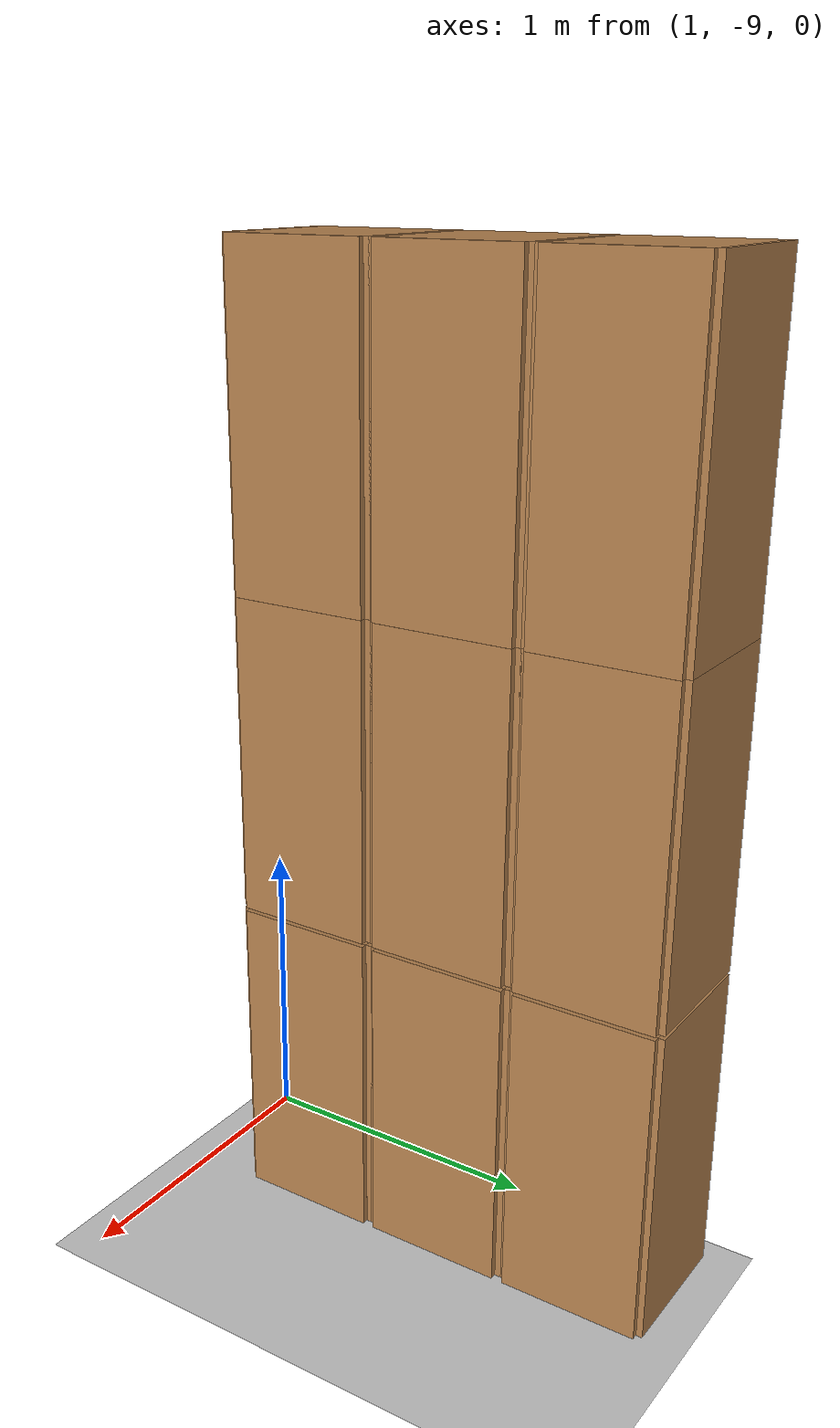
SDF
<sdf version="1.6">
 <world name="default">
  <model name="ground_plane">
   <static>1</static>
   <link name="link">
    <collision name="collision">
     <geometry><plane><normal>0 0 1</normal><size>100 100</size></plane></geometry>
     <surface>
      <contact><collide_bitmask>65535</collide_bitmask></contact>
      <friction><ode><mu>100</mu><mu2>50</mu2></ode></friction>
     </surface>
    </collision>
    <visual name="visual">
     <cast_shadows>0</cast_shadows>
     <geometry><plane><normal>0 0 1</normal><size>100 100</size></plane></geometry>
     <material>
      <script><uri>file://media/materials/scripts/gazebo.material</uri><name>Gazebo/Grey</name></script>
     </material>
    </visual>
   </link>
  </model>
  <model name="Locker18_clone_3_clone_clone_2">
   <model name="Locker18">
    <model name="Locker3">
     <model name="cabinet">
      <static>1</static>
      <link name="cabinet_bottom_plate">
       <inertial>
        <pose>0 0 -1 0 -0 0</pose>
        <inertia><ixx>2.05</ixx><ixy>0</ixy><ixz>0</ixz><iyy>2.05</iyy><iyz>0</iyz><izz>2.05</izz></inertia>
        <mass>25</mass>
       </inertial>
       <collision name="cabinet_bottom_plate_geom">
        <pose>0 0 0.01 0 -0 0</pose>
        <geometry><box><size>0.45 0.45 0.02</size></box></geometry>
       </collision>
       <visual name="cabinet_bottom_plate_geom_visual">
        <pose>0 0 0.01 0 -0 0</pose>
        <geometry><box><size>0.45 0.45 0.02</size></box></geometry>
        <material>
         <script><uri>file://media/materials/scripts/gazebo.material</uri><name>Gazebo/Wood</name></script>
        </material>
       </visual>
       <collision name="cabinet_bottom_plate_geom_cabinet_back_plate">
        <pose>0.235 0 0.51 0 -0 0</pose>
        <geometry><box><size>0.02 0.45 1.02</size></box></geometry>
       </collision>
       <visual name="cabinet_bottom_plate_geom_cabinet_back_plate_visual">
        <pose>0.235 0 0.51 0 -0 0</pose>
        <geometry><box><size>0.02 0.45 1.02</size></box></geometry>
        <material>
         <script><uri>file://media/materials/scripts/gazebo.material</uri><name>Gazebo/Wood</name></script>
        </material>
       </visual>
       <collision name="cabinet_bottom_plate_geom_cabinet_left_plate">
        <pose>0 0.235 0.51 0 -0 0</pose>
        <geometry><box><size>0.45 0.02 1.02</size></box></geometry>
       </collision>
       <visual name="cabinet_bottom_plate_geom_cabinet_left_plate_visual">
        <pose>0 0.235 0.51 0 -0 0</pose>
        <geometry><box><size>0.45 0.02 1.02</size></box></geometry>
        <material>
         <script><uri>file://media/materials/scripts/gazebo.material</uri><name>Gazebo/Wood</name></script>
        </material>
       </visual>
       <collision name="cabinet_bottom_plate_geom_cabinet_middle_plate">
        <pose>0 0 0.51 0 -0 0</pose>
        <geometry><box><size>0.45 0.45 0.02</size></box></geometry>
       </collision>
       <visual name="cabinet_bottom_plate_geom_cabinet_middle_plate_visual">
        <pose>0 0 0.51 0 -0 0</pose>
        <geometry><box><size>0.45 0.45 0.02</size></box></geometry>
        <material>
         <script><uri>file://media/materials/scripts/gazebo.material</uri><name>Gazebo/Wood</name></script>
        </material>
       </visual>
       <collision name="cabinet_bottom_plate_geom_cabinet_right_plate">
        <pose>0 -0.235 0.51 0 -0 0</pose>
        <geometry><box><size>0.45 0.02 1.02</size></box></geometry>
       </collision>
       <visual name="cabinet_bottom_plate_geom_cabinet_right_plate_visual">
        <pose>0 -0.235 0.51 0 -0 0</pose>
        <geometry><box><size>0.45 0.02 1.02</size></box></geometry>
        <material>
         <script><uri>file://media/materials/scripts/gazebo.material</uri><name>Gazebo/Wood</name></script>
        </material>
       </visual>
       <collision name="cabinet_bottom_plate_geom_cabinet_top_plate">
        <pose>0 0 1.01 0 -0 0</pose>
        <geometry><box><size>0.45 0.45 0.02</size></box></geometry>
       </collision>
       <visual name="cabinet_bottom_plate_geom_cabinet_top_plate_visual">
        <pose>0 0 1.01 0 -0 0</pose>
        <geometry><box><size>0.45 0.45 0.02</size></box></geometry>
        <material>
         <script><uri>file://media/materials/scripts/gazebo.material</uri><name>Gazebo/Wood</name></script>
        </material>
       </visual>
      </link>
      <pose>-0.676968 1.45758 0 0 -0 0</pose>
     </model>
     <model name="cabinet_clone">
      <static>1</static>
      <link name="cabinet_bottom_plate">
       <inertial>
        <pose>0 0 -1 0 -0 0</pose>
        <inertia><ixx>2.05</ixx><ixy>0</ixy><ixz>0</ixz><iyy>2.05</iyy><iyz>0</iyz><izz>2.05</izz></inertia>
        <mass>25</mass>
       </inertial>
       <collision name="cabinet_bottom_plate_geom">
        <pose>0 0 0.01 0 -0 0</pose>
        <geometry><box><size>0.45 0.45 0.02</size></box></geometry>
       </collision>
       <visual name="cabinet_bottom_plate_geom_visual">
        <pose>0 0 0.01 0 -0 0</pose>
        <geometry><box><size>0.45 0.45 0.02</size></box></geometry>
        <material>
         <script><uri>file://media/materials/scripts/gazebo.material</uri><name>Gazebo/Wood</name></script>
        </material>
       </visual>
       <collision name="cabinet_bottom_plate_geom_cabinet_back_plate">
        <pose>0.235 0 0.51 0 -0 0</pose>
        <geometry><box><size>0.02 0.45 1.02</size></box></geometry>
       </collision>
       <visual name="cabinet_bottom_plate_geom_cabinet_back_plate_visual">
        <pose>0.235 0 0.51 0 -0 0</pose>
        <geometry><box><size>0.02 0.45 1.02</size></box></geometry>
        <material>
         <script><uri>file://media/materials/scripts/gazebo.material</uri><name>Gazebo/Wood</name></script>
        </material>
       </visual>
       <collision name="cabinet_bottom_plate_geom_cabinet_left_plate">
        <pose>0 0.235 0.51 0 -0 0</pose>
        <geometry><box><size>0.45 0.02 1.02</size></box></geometry>
       </collision>
       <visual name="cabinet_bottom_plate_geom_cabinet_left_plate_visual">
        <pose>0 0.235 0.51 0 -0 0</pose>
        <geometry><box><size>0.45 0.02 1.02</size></box></geometry>
        <material>
         <script><uri>file://media/materials/scripts/gazebo.material</uri><name>Gazebo/Wood</name></script>
        </material>
       </visual>
       <collision name="cabinet_bottom_plate_geom_cabinet_middle_plate">
        <pose>0 0 0.51 0 -0 0</pose>
        <geometry><box><size>0.45 0.45 0.02</size></box></geometry>
       </collision>
       <visual name="cabinet_bottom_plate_geom_cabinet_middle_plate_visual">
        <pose>0 0 0.51 0 -0 0</pose>
        <geometry><box><size>0.45 0.45 0.02</size></box></geometry>
        <material>
         <script><uri>file://media/materials/scripts/gazebo.material</uri><name>Gazebo/Wood</name></script>
        </material>
       </visual>
       <collision name="cabinet_bottom_plate_geom_cabinet_right_plate">
        <pose>0 -0.235 0.51 0 -0 0</pose>
        <geometry><box><size>0.45 0.02 1.02</size></box></geometry>
       </collision>
       <visual name="cabinet_bottom_plate_geom_cabinet_right_plate_visual">
        <pose>0 -0.235 0.51 0 -0 0</pose>
        <geometry><box><size>0.45 0.02 1.02</size></box></geometry>
        <material>
         <script><uri>file://media/materials/scripts/gazebo.material</uri><name>Gazebo/Wood</name></script>
        </material>
       </visual>
       <collision name="cabinet_bottom_plate_geom_cabinet_top_plate">
        <pose>0 0 1.01 0 -0 0</pose>
        <geometry><box><size>0.45 0.45 0.02</size></box></geometry>
       </collision>
       <visual name="cabinet_bottom_plate_geom_cabinet_top_plate_visual">
        <pose>0 0 1.01 0 -0 0</pose>
        <geometry><box><size>0.45 0.45 0.02</size></box></geometry>
        <material>
         <script><uri>file://media/materials/scripts/gazebo.material</uri><name>Gazebo/Wood</name></script>
        </material>
       </visual>
      </link>
      <pose>-0.676968 0.970971 0 0 -0 0</pose>
     </model>
     <model name="cabinet_clone_0">
      <static>1</static>
      <link name="cabinet_bottom_plate">
       <inertial>
        <pose>0 0 -1 0 -0 0</pose>
        <inertia><ixx>2.05</ixx><ixy>0</ixy><ixz>0</ixz><iyy>2.05</iyy><iyz>0</iyz><izz>2.05</izz></inertia>
        <mass>25</mass>
       </inertial>
       <collision name="cabinet_bottom_plate_geom">
        <pose>0 0 0.01 0 -0 0</pose>
        <geometry><box><size>0.45 0.45 0.02</size></box></geometry>
       </collision>
       <visual name="cabinet_bottom_plate_geom_visual">
        <pose>0 0 0.01 0 -0 0</pose>
        <geometry><box><size>0.45 0.45 0.02</size></box></geometry>
        <material>
         <script><uri>file://media/materials/scripts/gazebo.material</uri><name>Gazebo/Wood</name></script>
        </material>
       </visual>
       <collision name="cabinet_bottom_plate_geom_cabinet_back_plate">
        <pose>0.235 0 0.51 0 -0 0</pose>
        <geometry><box><size>0.02 0.45 1.02</size></box></geometry>
       </collision>
       <visual name="cabinet_bottom_plate_geom_cabinet_back_plate_visual">
        <pose>0.235 0 0.51 0 -0 0</pose>
        <geometry><box><size>0.02 0.45 1.02</size></box></geometry>
        <material>
         <script><uri>file://media/materials/scripts/gazebo.material</uri><name>Gazebo/Wood</name></script>
        </material>
       </visual>
       <collision name="cabinet_bottom_plate_geom_cabinet_left_plate">
        <pose>0 0.235 0.51 0 -0 0</pose>
        <geometry><box><size>0.45 0.02 1.02</size></box></geometry>
       </collision>
       <visual name="cabinet_bottom_plate_geom_cabinet_left_plate_visual">
        <pose>0 0.235 0.51 0 -0 0</pose>
        <geometry><box><size>0.45 0.02 1.02</size></box></geometry>
        <material>
         <script><uri>file://media/materials/scripts/gazebo.material</uri><name>Gazebo/Wood</name></script>
        </material>
       </visual>
       <collision name="cabinet_bottom_plate_geom_cabinet_middle_plate">
        <pose>0 0 0.51 0 -0 0</pose>
        <geometry><box><size>0.45 0.45 0.02</size></box></geometry>
       </collision>
       <visual name="cabinet_bottom_plate_geom_cabinet_middle_plate_visual">
        <pose>0 0 0.51 0 -0 0</pose>
        <geometry><box><size>0.45 0.45 0.02</size></box></geometry>
        <material>
         <script><uri>file://media/materials/scripts/gazebo.material</uri><name>Gazebo/Wood</name></script>
        </material>
       </visual>
       <collision name="cabinet_bottom_plate_geom_cabinet_right_plate">
        <pose>0 -0.235 0.51 0 -0 0</pose>
        <geometry><box><size>0.45 0.02 1.02</size></box></geometry>
       </collision>
       <visual name="cabinet_bottom_plate_geom_cabinet_right_plate_visual">
        <pose>0 -0.235 0.51 0 -0 0</pose>
        <geometry><box><size>0.45 0.02 1.02</size></box></geometry>
        <material>
         <script><uri>file://media/materials/scripts/gazebo.material</uri><name>Gazebo/Wood</name></script>
        </material>
       </visual>
       <collision name="cabinet_bottom_plate_geom_cabinet_top_plate">
        <pose>0 0 1.01 0 -0 0</pose>
        <geometry><box><size>0.45 0.45 0.02</size></box></geometry>
       </collision>
       <visual name="cabinet_bottom_plate_geom_cabinet_top_plate_visual">
        <pose>0 0 1.01 0 -0 0</pose>
        <geometry><box><size>0.45 0.45 0.02</size></box></geometry>
        <material>
         <script><uri>file://media/materials/scripts/gazebo.material</uri><name>Gazebo/Wood</name></script>
        </material>
       </visual>
      </link>
      <pose>-0.676968 0.48391 0 0 -0 0</pose>
     </model>
     <static>0</static>
     <pose>0 3e-06 -1.02763 0 -0 0</pose>
    </model>
    <model name="Locker3_clone">
     <model name="cabinet">
      <static>1</static>
      <link name="cabinet_bottom_plate">
       <inertial>
        <pose>0 0 -1 0 -0 0</pose>
        <inertia><ixx>2.05</ixx><ixy>0</ixy><ixz>0</ixz><iyy>2.05</iyy><iyz>0</iyz><izz>2.05</izz></inertia>
        <mass>25</mass>
       </inertial>
       <collision name="cabinet_bottom_plate_geom">
        <pose>0 0 0.01 0 -0 0</pose>
        <geometry><box><size>0.45 0.45 0.02</size></box></geometry>
       </collision>
       <visual name="cabinet_bottom_plate_geom_visual">
        <pose>0 0 0.01 0 -0 0</pose>
        <geometry><box><size>0.45 0.45 0.02</size></box></geometry>
        <material>
         <script><uri>file://media/materials/scripts/gazebo.material</uri><name>Gazebo/Wood</name></script>
        </material>
       </visual>
       <collision name="cabinet_bottom_plate_geom_cabinet_back_plate">
        <pose>0.235 0 0.51 0 -0 0</pose>
        <geometry><box><size>0.02 0.45 1.02</size></box></geometry>
       </collision>
       <visual name="cabinet_bottom_plate_geom_cabinet_back_plate_visual">
        <pose>0.235 0 0.51 0 -0 0</pose>
        <geometry><box><size>0.02 0.45 1.02</size></box></geometry>
        <material>
         <script><uri>file://media/materials/scripts/gazebo.material</uri><name>Gazebo/Wood</name></script>
        </material>
       </visual>
       <collision name="cabinet_bottom_plate_geom_cabinet_left_plate">
        <pose>0 0.235 0.51 0 -0 0</pose>
        <geometry><box><size>0.45 0.02 1.02</size></box></geometry>
       </collision>
       <visual name="cabinet_bottom_plate_geom_cabinet_left_plate_visual">
        <pose>0 0.235 0.51 0 -0 0</pose>
        <geometry><box><size>0.45 0.02 1.02</size></box></geometry>
        <material>
         <script><uri>file://media/materials/scripts/gazebo.material</uri><name>Gazebo/Wood</name></script>
        </material>
       </visual>
       <collision name="cabinet_bottom_plate_geom_cabinet_middle_plate">
        <pose>0 0 0.51 0 -0 0</pose>
        <geometry><box><size>0.45 0.45 0.02</size></box></geometry>
       </collision>
       <visual name="cabinet_bottom_plate_geom_cabinet_middle_plate_visual">
        <pose>0 0 0.51 0 -0 0</pose>
        <geometry><box><size>0.45 0.45 0.02</size></box></geometry>
        <material>
         <script><uri>file://media/materials/scripts/gazebo.material</uri><name>Gazebo/Wood</name></script>
        </material>
       </visual>
       <collision name="cabinet_bottom_plate_geom_cabinet_right_plate">
        <pose>0 -0.235 0.51 0 -0 0</pose>
        <geometry><box><size>0.45 0.02 1.02</size></box></geometry>
       </collision>
       <visual name="cabinet_bottom_plate_geom_cabinet_right_plate_visual">
        <pose>0 -0.235 0.51 0 -0 0</pose>
        <geometry><box><size>0.45 0.02 1.02</size></box></geometry>
        <material>
         <script><uri>file://media/materials/scripts/gazebo.material</uri><name>Gazebo/Wood</name></script>
        </material>
       </visual>
       <collision name="cabinet_bottom_plate_geom_cabinet_top_plate">
        <pose>0 0 1.01 0 -0 0</pose>
        <geometry><box><size>0.45 0.45 0.02</size></box></geometry>
       </collision>
       <visual name="cabinet_bottom_plate_geom_cabinet_top_plate_visual">
        <pose>0 0 1.01 0 -0 0</pose>
        <geometry><box><size>0.45 0.45 0.02</size></box></geometry>
        <material>
         <script><uri>file://media/materials/scripts/gazebo.material</uri><name>Gazebo/Wood</name></script>
        </material>
       </visual>
      </link>
      <pose>-0.676968 1.45758 0 0 -0 0</pose>
     </model>
     <model name="cabinet_clone">
      <static>1</static>
      <link name="cabinet_bottom_plate">
       <inertial>
        <pose>0 0 -1 0 -0 0</pose>
        <inertia><ixx>2.05</ixx><ixy>0</ixy><ixz>0</ixz><iyy>2.05</iyy><iyz>0</iyz><izz>2.05</izz></inertia>
        <mass>25</mass>
       </inertial>
       <collision name="cabinet_bottom_plate_geom">
        <pose>0 0 0.01 0 -0 0</pose>
        <geometry><box><size>0.45 0.45 0.02</size></box></geometry>
       </collision>
       <visual name="cabinet_bottom_plate_geom_visual">
        <pose>0 0 0.01 0 -0 0</pose>
        <geometry><box><size>0.45 0.45 0.02</size></box></geometry>
        <material>
         <script><uri>file://media/materials/scripts/gazebo.material</uri><name>Gazebo/Wood</name></script>
        </material>
       </visual>
       <collision name="cabinet_bottom_plate_geom_cabinet_back_plate">
        <pose>0.235 0 0.51 0 -0 0</pose>
        <geometry><box><size>0.02 0.45 1.02</size></box></geometry>
       </collision>
       <visual name="cabinet_bottom_plate_geom_cabinet_back_plate_visual">
        <pose>0.235 0 0.51 0 -0 0</pose>
        <geometry><box><size>0.02 0.45 1.02</size></box></geometry>
        <material>
         <script><uri>file://media/materials/scripts/gazebo.material</uri><name>Gazebo/Wood</name></script>
        </material>
       </visual>
       <collision name="cabinet_bottom_plate_geom_cabinet_left_plate">
        <pose>0 0.235 0.51 0 -0 0</pose>
        <geometry><box><size>0.45 0.02 1.02</size></box></geometry>
       </collision>
       <visual name="cabinet_bottom_plate_geom_cabinet_left_plate_visual">
        <pose>0 0.235 0.51 0 -0 0</pose>
        <geometry><box><size>0.45 0.02 1.02</size></box></geometry>
        <material>
         <script><uri>file://media/materials/scripts/gazebo.material</uri><name>Gazebo/Wood</name></script>
        </material>
       </visual>
       <collision name="cabinet_bottom_plate_geom_cabinet_middle_plate">
        <pose>0 0 0.51 0 -0 0</pose>
        <geometry><box><size>0.45 0.45 0.02</size></box></geometry>
       </collision>
       <visual name="cabinet_bottom_plate_geom_cabinet_middle_plate_visual">
        <pose>0 0 0.51 0 -0 0</pose>
        <geometry><box><size>0.45 0.45 0.02</size></box></geometry>
        <material>
         <script><uri>file://media/materials/scripts/gazebo.material</uri><name>Gazebo/Wood</name></script>
        </material>
       </visual>
       <collision name="cabinet_bottom_plate_geom_cabinet_right_plate">
        <pose>0 -0.235 0.51 0 -0 0</pose>
        <geometry><box><size>0.45 0.02 1.02</size></box></geometry>
       </collision>
       <visual name="cabinet_bottom_plate_geom_cabinet_right_plate_visual">
        <pose>0 -0.235 0.51 0 -0 0</pose>
        <geometry><box><size>0.45 0.02 1.02</size></box></geometry>
        <material>
         <script><uri>file://media/materials/scripts/gazebo.material</uri><name>Gazebo/Wood</name></script>
        </material>
       </visual>
       <collision name="cabinet_bottom_plate_geom_cabinet_top_plate">
        <pose>0 0 1.01 0 -0 0</pose>
        <geometry><box><size>0.45 0.45 0.02</size></box></geometry>
       </collision>
       <visual name="cabinet_bottom_plate_geom_cabinet_top_plate_visual">
        <pose>0 0 1.01 0 -0 0</pose>
        <geometry><box><size>0.45 0.45 0.02</size></box></geometry>
        <material>
         <script><uri>file://media/materials/scripts/gazebo.material</uri><name>Gazebo/Wood</name></script>
        </material>
       </visual>
      </link>
      <pose>-0.676968 0.970971 0 0 -0 0</pose>
     </model>
     <model name="cabinet_clone_0">
      <static>1</static>
      <link name="cabinet_bottom_plate">
       <inertial>
        <pose>0 0 -1 0 -0 0</pose>
        <inertia><ixx>2.05</ixx><ixy>0</ixy><ixz>0</ixz><iyy>2.05</iyy><iyz>0</iyz><izz>2.05</izz></inertia>
        <mass>25</mass>
       </inertial>
       <collision name="cabinet_bottom_plate_geom">
        <pose>0 0 0.01 0 -0 0</pose>
        <geometry><box><size>0.45 0.45 0.02</size></box></geometry>
       </collision>
       <visual name="cabinet_bottom_plate_geom_visual">
        <pose>0 0 0.01 0 -0 0</pose>
        <geometry><box><size>0.45 0.45 0.02</size></box></geometry>
        <material>
         <script><uri>file://media/materials/scripts/gazebo.material</uri><name>Gazebo/Wood</name></script>
        </material>
       </visual>
       <collision name="cabinet_bottom_plate_geom_cabinet_back_plate">
        <pose>0.235 0 0.51 0 -0 0</pose>
        <geometry><box><size>0.02 0.45 1.02</size></box></geometry>
       </collision>
       <visual name="cabinet_bottom_plate_geom_cabinet_back_plate_visual">
        <pose>0.235 0 0.51 0 -0 0</pose>
        <geometry><box><size>0.02 0.45 1.02</size></box></geometry>
        <material>
         <script><uri>file://media/materials/scripts/gazebo.material</uri><name>Gazebo/Wood</name></script>
        </material>
       </visual>
       <collision name="cabinet_bottom_plate_geom_cabinet_left_plate">
        <pose>0 0.235 0.51 0 -0 0</pose>
        <geometry><box><size>0.45 0.02 1.02</size></box></geometry>
       </collision>
       <visual name="cabinet_bottom_plate_geom_cabinet_left_plate_visual">
        <pose>0 0.235 0.51 0 -0 0</pose>
        <geometry><box><size>0.45 0.02 1.02</size></box></geometry>
        <material>
         <script><uri>file://media/materials/scripts/gazebo.material</uri><name>Gazebo/Wood</name></script>
        </material>
       </visual>
       <collision name="cabinet_bottom_plate_geom_cabinet_middle_plate">
        <pose>0 0 0.51 0 -0 0</pose>
        <geometry><box><size>0.45 0.45 0.02</size></box></geometry>
       </collision>
       <visual name="cabinet_bottom_plate_geom_cabinet_middle_plate_visual">
        <pose>0 0 0.51 0 -0 0</pose>
        <geometry><box><size>0.45 0.45 0.02</size></box></geometry>
        <material>
         <script><uri>file://media/materials/scripts/gazebo.material</uri><name>Gazebo/Wood</name></script>
        </material>
       </visual>
       <collision name="cabinet_bottom_plate_geom_cabinet_right_plate">
        <pose>0 -0.235 0.51 0 -0 0</pose>
        <geometry><box><size>0.45 0.02 1.02</size></box></geometry>
       </collision>
       <visual name="cabinet_bottom_plate_geom_cabinet_right_plate_visual">
        <pose>0 -0.235 0.51 0 -0 0</pose>
        <geometry><box><size>0.45 0.02 1.02</size></box></geometry>
        <material>
         <script><uri>file://media/materials/scripts/gazebo.material</uri><name>Gazebo/Wood</name></script>
        </material>
       </visual>
       <collision name="cabinet_bottom_plate_geom_cabinet_top_plate">
        <pose>0 0 1.01 0 -0 0</pose>
        <geometry><box><size>0.45 0.45 0.02</size></box></geometry>
       </collision>
       <visual name="cabinet_bottom_plate_geom_cabinet_top_plate_visual">
        <pose>0 0 1.01 0 -0 0</pose>
        <geometry><box><size>0.45 0.45 0.02</size></box></geometry>
        <material>
         <script><uri>file://media/materials/scripts/gazebo.material</uri><name>Gazebo/Wood</name></script>
        </material>
       </visual>
      </link>
      <pose>-0.676968 0.48391 0 0 -0 0</pose>
     </model>
     <static>0</static>
     <pose>0 3e-06 0.003717 0 -0 0</pose>
    </model>
    <model name="Locker3_clone_clone">
     <model name="cabinet">
      <static>1</static>
      <link name="cabinet_bottom_plate">
       <inertial>
        <pose>0 0 -1 0 -0 0</pose>
        <inertia><ixx>2.05</ixx><ixy>0</ixy><ixz>0</ixz><iyy>2.05</iyy><iyz>0</iyz><izz>2.05</izz></inertia>
        <mass>25</mass>
       </inertial>
       <collision name="cabinet_bottom_plate_geom">
        <pose>0 0 0.01 0 -0 0</pose>
        <geometry><box><size>0.45 0.45 0.02</size></box></geometry>
       </collision>
       <visual name="cabinet_bottom_plate_geom_visual">
        <pose>0 0 0.01 0 -0 0</pose>
        <geometry><box><size>0.45 0.45 0.02</size></box></geometry>
        <material>
         <script><uri>file://media/materials/scripts/gazebo.material</uri><name>Gazebo/Wood</name></script>
        </material>
       </visual>
       <collision name="cabinet_bottom_plate_geom_cabinet_back_plate">
        <pose>0.235 0 0.51 0 -0 0</pose>
        <geometry><box><size>0.02 0.45 1.02</size></box></geometry>
       </collision>
       <visual name="cabinet_bottom_plate_geom_cabinet_back_plate_visual">
        <pose>0.235 0 0.51 0 -0 0</pose>
        <geometry><box><size>0.02 0.45 1.02</size></box></geometry>
        <material>
         <script><uri>file://media/materials/scripts/gazebo.material</uri><name>Gazebo/Wood</name></script>
        </material>
       </visual>
       <collision name="cabinet_bottom_plate_geom_cabinet_left_plate">
        <pose>0 0.235 0.51 0 -0 0</pose>
        <geometry><box><size>0.45 0.02 1.02</size></box></geometry>
       </collision>
       <visual name="cabinet_bottom_plate_geom_cabinet_left_plate_visual">
        <pose>0 0.235 0.51 0 -0 0</pose>
        <geometry><box><size>0.45 0.02 1.02</size></box></geometry>
        <material>
         <script><uri>file://media/materials/scripts/gazebo.material</uri><name>Gazebo/Wood</name></script>
        </material>
       </visual>
       <collision name="cabinet_bottom_plate_geom_cabinet_middle_plate">
        <pose>0 0 0.51 0 -0 0</pose>
        <geometry><box><size>0.45 0.45 0.02</size></box></geometry>
       </collision>
       <visual name="cabinet_bottom_plate_geom_cabinet_middle_plate_visual">
        <pose>0 0 0.51 0 -0 0</pose>
        <geometry><box><size>0.45 0.45 0.02</size></box></geometry>
        <material>
         <script><uri>file://media/materials/scripts/gazebo.material</uri><name>Gazebo/Wood</name></script>
        </material>
       </visual>
       <collision name="cabinet_bottom_plate_geom_cabinet_right_plate">
        <pose>0 -0.235 0.51 0 -0 0</pose>
        <geometry><box><size>0.45 0.02 1.02</size></box></geometry>
       </collision>
       <visual name="cabinet_bottom_plate_geom_cabinet_right_plate_visual">
        <pose>0 -0.235 0.51 0 -0 0</pose>
        <geometry><box><size>0.45 0.02 1.02</size></box></geometry>
        <material>
         <script><uri>file://media/materials/scripts/gazebo.material</uri><name>Gazebo/Wood</name></script>
        </material>
       </visual>
       <collision name="cabinet_bottom_plate_geom_cabinet_top_plate">
        <pose>0 0 1.01 0 -0 0</pose>
        <geometry><box><size>0.45 0.45 0.02</size></box></geometry>
       </collision>
       <visual name="cabinet_bottom_plate_geom_cabinet_top_plate_visual">
        <pose>0 0 1.01 0 -0 0</pose>
        <geometry><box><size>0.45 0.45 0.02</size></box></geometry>
        <material>
         <script><uri>file://media/materials/scripts/gazebo.material</uri><name>Gazebo/Wood</name></script>
        </material>
       </visual>
      </link>
      <pose>-0.676968 1.45758 0 0 -0 0</pose>
     </model>
     <model name="cabinet_clone">
      <static>1</static>
      <link name="cabinet_bottom_plate">
       <inertial>
        <pose>0 0 -1 0 -0 0</pose>
        <inertia><ixx>2.05</ixx><ixy>0</ixy><ixz>0</ixz><iyy>2.05</iyy><iyz>0</iyz><izz>2.05</izz></inertia>
        <mass>25</mass>
       </inertial>
       <collision name="cabinet_bottom_plate_geom">
        <pose>0 0 0.01 0 -0 0</pose>
        <geometry><box><size>0.45 0.45 0.02</size></box></geometry>
       </collision>
       <visual name="cabinet_bottom_plate_geom_visual">
        <pose>0 0 0.01 0 -0 0</pose>
        <geometry><box><size>0.45 0.45 0.02</size></box></geometry>
        <material>
         <script><uri>file://media/materials/scripts/gazebo.material</uri><name>Gazebo/Wood</name></script>
        </material>
       </visual>
       <collision name="cabinet_bottom_plate_geom_cabinet_back_plate">
        <pose>0.235 0 0.51 0 -0 0</pose>
        <geometry><box><size>0.02 0.45 1.02</size></box></geometry>
       </collision>
       <visual name="cabinet_bottom_plate_geom_cabinet_back_plate_visual">
        <pose>0.235 0 0.51 0 -0 0</pose>
        <geometry><box><size>0.02 0.45 1.02</size></box></geometry>
        <material>
         <script><uri>file://media/materials/scripts/gazebo.material</uri><name>Gazebo/Wood</name></script>
        </material>
       </visual>
       <collision name="cabinet_bottom_plate_geom_cabinet_left_plate">
        <pose>0 0.235 0.51 0 -0 0</pose>
        <geometry><box><size>0.45 0.02 1.02</size></box></geometry>
       </collision>
       <visual name="cabinet_bottom_plate_geom_cabinet_left_plate_visual">
        <pose>0 0.235 0.51 0 -0 0</pose>
        <geometry><box><size>0.45 0.02 1.02</size></box></geometry>
        <material>
         <script><uri>file://media/materials/scripts/gazebo.material</uri><name>Gazebo/Wood</name></script>
        </material>
       </visual>
       <collision name="cabinet_bottom_plate_geom_cabinet_middle_plate">
        <pose>0 0 0.51 0 -0 0</pose>
        <geometry><box><size>0.45 0.45 0.02</size></box></geometry>
       </collision>
       <visual name="cabinet_bottom_plate_geom_cabinet_middle_plate_visual">
        <pose>0 0 0.51 0 -0 0</pose>
        <geometry><box><size>0.45 0.45 0.02</size></box></geometry>
        <material>
         <script><uri>file://media/materials/scripts/gazebo.material</uri><name>Gazebo/Wood</name></script>
        </material>
       </visual>
       <collision name="cabinet_bottom_plate_geom_cabinet_right_plate">
        <pose>0 -0.235 0.51 0 -0 0</pose>
        <geometry><box><size>0.45 0.02 1.02</size></box></geometry>
       </collision>
       <visual name="cabinet_bottom_plate_geom_cabinet_right_plate_visual">
        <pose>0 -0.235 0.51 0 -0 0</pose>
        <geometry><box><size>0.45 0.02 1.02</size></box></geometry>
        <material>
         <script><uri>file://media/materials/scripts/gazebo.material</uri><name>Gazebo/Wood</name></script>
        </material>
       </visual>
       <collision name="cabinet_bottom_plate_geom_cabinet_top_plate">
        <pose>0 0 1.01 0 -0 0</pose>
        <geometry><box><size>0.45 0.45 0.02</size></box></geometry>
       </collision>
       <visual name="cabinet_bottom_plate_geom_cabinet_top_plate_visual">
        <pose>0 0 1.01 0 -0 0</pose>
        <geometry><box><size>0.45 0.45 0.02</size></box></geometry>
        <material>
         <script><uri>file://media/materials/scripts/gazebo.material</uri><name>Gazebo/Wood</name></script>
        </material>
       </visual>
      </link>
      <pose>-0.676968 0.970971 0 0 -0 0</pose>
     </model>
     <model name="cabinet_clone_0">
      <static>1</static>
      <link name="cabinet_bottom_plate">
       <inertial>
        <pose>0 0 -1 0 -0 0</pose>
        <inertia><ixx>2.05</ixx><ixy>0</ixy><ixz>0</ixz><iyy>2.05</iyy><iyz>0</iyz><izz>2.05</izz></inertia>
        <mass>25</mass>
       </inertial>
       <collision name="cabinet_bottom_plate_geom">
        <pose>0 0 0.01 0 -0 0</pose>
        <geometry><box><size>0.45 0.45 0.02</size></box></geometry>
       </collision>
       <visual name="cabinet_bottom_plate_geom_visual">
        <pose>0 0 0.01 0 -0 0</pose>
        <geometry><box><size>0.45 0.45 0.02</size></box></geometry>
        <material>
         <script><uri>file://media/materials/scripts/gazebo.material</uri><name>Gazebo/Wood</name></script>
        </material>
       </visual>
       <collision name="cabinet_bottom_plate_geom_cabinet_back_plate">
        <pose>0.235 0 0.51 0 -0 0</pose>
        <geometry><box><size>0.02 0.45 1.02</size></box></geometry>
       </collision>
       <visual name="cabinet_bottom_plate_geom_cabinet_back_plate_visual">
        <pose>0.235 0 0.51 0 -0 0</pose>
        <geometry><box><size>0.02 0.45 1.02</size></box></geometry>
        <material>
         <script><uri>file://media/materials/scripts/gazebo.material</uri><name>Gazebo/Wood</name></script>
        </material>
       </visual>
       <collision name="cabinet_bottom_plate_geom_cabinet_left_plate">
        <pose>0 0.235 0.51 0 -0 0</pose>
        <geometry><box><size>0.45 0.02 1.02</size></box></geometry>
       </collision>
       <visual name="cabinet_bottom_plate_geom_cabinet_left_plate_visual">
        <pose>0 0.235 0.51 0 -0 0</pose>
        <geometry><box><size>0.45 0.02 1.02</size></box></geometry>
        <material>
         <script><uri>file://media/materials/scripts/gazebo.material</uri><name>Gazebo/Wood</name></script>
        </material>
       </visual>
       <collision name="cabinet_bottom_plate_geom_cabinet_middle_plate">
        <pose>0 0 0.51 0 -0 0</pose>
        <geometry><box><size>0.45 0.45 0.02</size></box></geometry>
       </collision>
       <visual name="cabinet_bottom_plate_geom_cabinet_middle_plate_visual">
        <pose>0 0 0.51 0 -0 0</pose>
        <geometry><box><size>0.45 0.45 0.02</size></box></geometry>
        <material>
         <script><uri>file://media/materials/scripts/gazebo.material</uri><name>Gazebo/Wood</name></script>
        </material>
       </visual>
       <collision name="cabinet_bottom_plate_geom_cabinet_right_plate">
        <pose>0 -0.235 0.51 0 -0 0</pose>
        <geometry><box><size>0.45 0.02 1.02</size></box></geometry>
       </collision>
       <visual name="cabinet_bottom_plate_geom_cabinet_right_plate_visual">
        <pose>0 -0.235 0.51 0 -0 0</pose>
        <geometry><box><size>0.45 0.02 1.02</size></box></geometry>
        <material>
         <script><uri>file://media/materials/scripts/gazebo.material</uri><name>Gazebo/Wood</name></script>
        </material>
       </visual>
       <collision name="cabinet_bottom_plate_geom_cabinet_top_plate">
        <pose>0 0 1.01 0 -0 0</pose>
        <geometry><box><size>0.45 0.45 0.02</size></box></geometry>
       </collision>
       <visual name="cabinet_bottom_plate_geom_cabinet_top_plate_visual">
        <pose>0 0 1.01 0 -0 0</pose>
        <geometry><box><size>0.45 0.45 0.02</size></box></geometry>
        <material>
         <script><uri>file://media/materials/scripts/gazebo.material</uri><name>Gazebo/Wood</name></script>
        </material>
       </visual>
      </link>
      <pose>-0.676968 0.48391 0 0 -0 0</pose>
     </model>
     <static>0</static>
     <pose>0 3e-06 1.02391 0 -0 0</pose>
    </model>
    <static>0</static>
    <pose>-0 4e-06 4e-06 0 -0 0</pose>
   </model>
   <static>0</static>
   <pose>1.94715 -8.99698 1.08672 0 -0 0</pose>
  </model>
 </world>
</sdf>
